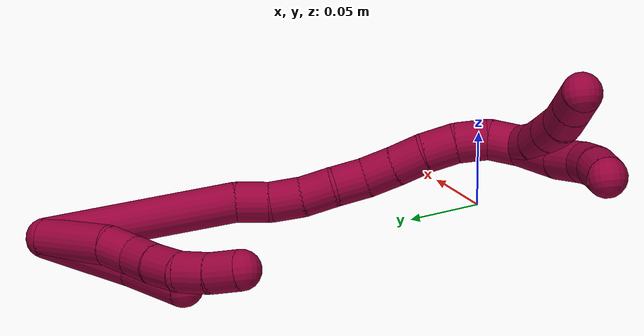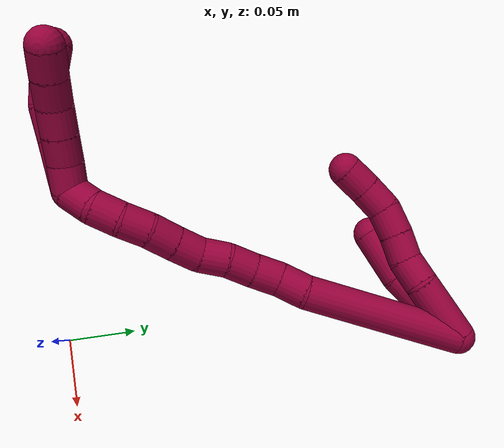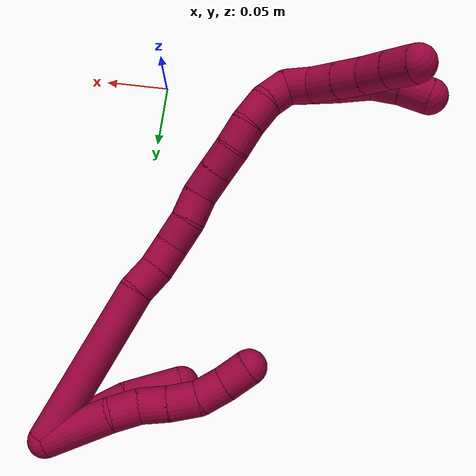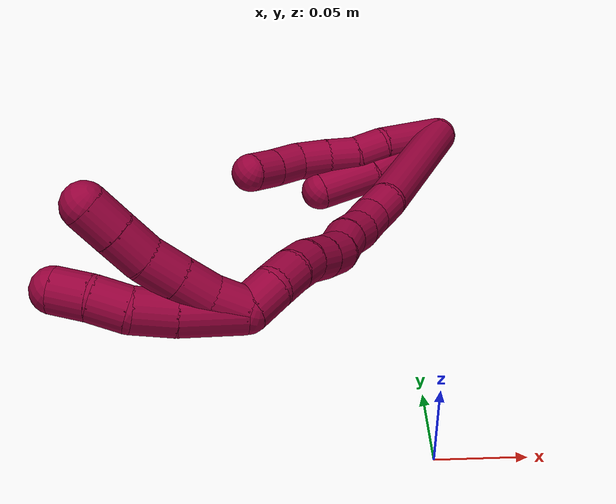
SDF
<sdf version="1.7">
 <world name="default">
  <model name="8">
   <static>0</static>
   <link name="8">
    <collision name="collision-cylinder-e_1_2_8">
     <pose>-0.00983 -0.020803 0.006189 1.28165 -0.425274 -0.319309</pose>
     <geometry><cylinder><radius>0.0125</radius><length>0.047653</length></cylinder></geometry>
     <surface>
      <friction><ode><mu>1.16</mu><mu2>1.16</mu2><slip1>0</slip1><slip2>0</slip2></ode></friction>
      <contact><ode><kp>1e+06</kp><kd>1</kd><max_vel>0</max_vel><min_depth>0.001</min_depth></ode></contact>
     </surface>
    </collision>
    <visual name="visual-cylinder-e_1_2_8">
     <pose>-0.00983 -0.020803 0.006189 1.28165 -0.425274 -0.319309</pose>
     <geometry><cylinder><radius>0.0125</radius><length>0.047653</length></cylinder></geometry>
     <material><ambient>0.584314 0 0.227451 1</ambient></material>
    </visual>
    <collision name="collision-cylinder-e_2_8_9">
     <pose>-0.023784 -0.049537 0.017102 1.03347 -0.420129 -0.241132</pose>
     <geometry><cylinder><radius>0.0125</radius><length>0.020222</length></cylinder></geometry>
     <surface>
      <friction><ode><mu>1.16</mu><mu2>1.16</mu2><slip1>0</slip1><slip2>0</slip2></ode></friction>
      <contact><ode><kp>1e+06</kp><kd>1</kd><max_vel>0</max_vel><min_depth>0.001</min_depth></ode></contact>
     </surface>
    </collision>
    <visual name="visual-cylinder-e_2_8_9">
     <pose>-0.023784 -0.049537 0.017102 1.03347 -0.420129 -0.241132</pose>
     <geometry><cylinder><radius>0.0125</radius><length>0.020222</length></cylinder></geometry>
     <material><ambient>0.584314 0 0.227451 1</ambient></material>
    </visual>
    <collision name="collision-cylinder-e_3_9_10">
     <pose>-0.029618 -0.066423 0.026029 1.13209 -0.171157 -0.108913</pose>
     <geometry><cylinder><radius>0.0125</radius><length>0.020077</length></cylinder></geometry>
     <surface>
      <friction><ode><mu>1.16</mu><mu2>1.16</mu2><slip1>0</slip1><slip2>0</slip2></ode></friction>
      <contact><ode><kp>1e+06</kp><kd>1</kd><max_vel>0</max_vel><min_depth>0.001</min_depth></ode></contact>
     </surface>
    </collision>
    <visual name="visual-cylinder-e_3_9_10">
     <pose>-0.029618 -0.066423 0.026029 1.13209 -0.171157 -0.108913</pose>
     <geometry><cylinder><radius>0.0125</radius><length>0.020077</length></cylinder></geometry>
     <material><ambient>0.584314 0 0.227451 1</ambient></material>
    </visual>
    <collision name="collision-cylinder-e_4_10_11">
     <pose>-0.03414 -0.084865 0.034253 1.1698 -0.266436 -0.177019</pose>
     <geometry><cylinder><radius>0.0125</radius><length>0.021364</length></cylinder></geometry>
     <surface>
      <friction><ode><mu>1.16</mu><mu2>1.16</mu2><slip1>0</slip1><slip2>0</slip2></ode></friction>
      <contact><ode><kp>1e+06</kp><kd>1</kd><max_vel>0</max_vel><min_depth>0.001</min_depth></ode></contact>
     </surface>
    </collision>
    <visual name="visual-cylinder-e_4_10_11">
     <pose>-0.03414 -0.084865 0.034253 1.1698 -0.266436 -0.177019</pose>
     <geometry><cylinder><radius>0.0125</radius><length>0.021364</length></cylinder></geometry>
     <material><ambient>0.584314 0 0.227451 1</ambient></material>
    </visual>
    <collision name="collision-cylinder-e_5_11_12">
     <pose>-0.042392 -0.102727 0.040276 1.33634 -0.563389 -0.449112</pose>
     <geometry><cylinder><radius>0.0125</radius><length>0.020369</length></cylinder></geometry>
     <surface>
      <friction><ode><mu>1.16</mu><mu2>1.16</mu2><slip1>0</slip1><slip2>0</slip2></ode></friction>
      <contact><ode><kp>1e+06</kp><kd>1</kd><max_vel>0</max_vel><min_depth>0.001</min_depth></ode></contact>
     </surface>
    </collision>
    <visual name="visual-cylinder-e_5_11_12">
     <pose>-0.042392 -0.102727 0.040276 1.33634 -0.563389 -0.449112</pose>
     <geometry><cylinder><radius>0.0125</radius><length>0.020369</length></cylinder></geometry>
     <material><ambient>0.584314 0 0.227451 1</ambient></material>
    </visual>
    <collision name="collision-cylinder-e_6_12_6">
     <pose>-0.0535 -0.119511 0.042855 1.50212 -0.592073 -0.554797</pose>
     <geometry><cylinder><radius>0.0125</radius><length>0.020316</length></cylinder></geometry>
     <surface>
      <friction><ode><mu>1.16</mu><mu2>1.16</mu2><slip1>0</slip1><slip2>0</slip2></ode></friction>
      <contact><ode><kp>1e+06</kp><kd>1</kd><max_vel>0</max_vel><min_depth>0.001</min_depth></ode></contact>
     </surface>
    </collision>
    <visual name="visual-cylinder-e_6_12_6">
     <pose>-0.0535 -0.119511 0.042855 1.50212 -0.592073 -0.554797</pose>
     <geometry><cylinder><radius>0.0125</radius><length>0.020316</length></cylinder></geometry>
     <material><ambient>0.584314 0 0.227451 1</ambient></material>
    </visual>
    <collision name="collision-cylinder-e_1_2_13">
     <pose>-0.017419 -0.021159 0.012928 1.02234 -0.612406 -0.351</pose>
     <geometry><cylinder><radius>0.0125</radius><length>0.060606</length></cylinder></geometry>
     <surface>
      <friction><ode><mu>1.16</mu><mu2>1.16</mu2><slip1>0</slip1><slip2>0</slip2></ode></friction>
      <contact><ode><kp>1e+06</kp><kd>1</kd><max_vel>0</max_vel><min_depth>0.001</min_depth></ode></contact>
     </surface>
    </collision>
    <visual name="visual-cylinder-e_1_2_13">
     <pose>-0.017419 -0.021159 0.012928 1.02234 -0.612406 -0.351</pose>
     <geometry><cylinder><radius>0.0125</radius><length>0.060606</length></cylinder></geometry>
     <material><ambient>0.584314 0 0.227451 1</ambient></material>
    </visual>
    <collision name="collision-cylinder-e_2_13_5">
     <pose>-0.042625 -0.058005 0.034871 1.04918 -0.406387 -0.237336</pose>
     <geometry><cylinder><radius>0.0125</radius><length>0.039394</length></cylinder></geometry>
     <surface>
      <friction><ode><mu>1.16</mu><mu2>1.16</mu2><slip1>0</slip1><slip2>0</slip2></ode></friction>
      <contact><ode><kp>1e+06</kp><kd>1</kd><max_vel>0</max_vel><min_depth>0.001</min_depth></ode></contact>
     </surface>
    </collision>
    <visual name="visual-cylinder-e_2_13_5">
     <pose>-0.042625 -0.058005 0.034871 1.04918 -0.406387 -0.237336</pose>
     <geometry><cylinder><radius>0.0125</radius><length>0.039394</length></cylinder></geometry>
     <material><ambient>0.584314 0 0.227451 1</ambient></material>
    </visual>
    <collision name="collision-cylinder-e_1_2_14">
     <pose>-0.050426 -0.030725 -0.005021 1.73279 -1.01769 -1.16173</pose>
     <geometry><cylinder><radius>0.0125</radius><length>0.118525</length></cylinder></geometry>
     <surface>
      <friction><ode><mu>1.16</mu><mu2>1.16</mu2><slip1>0</slip1><slip2>0</slip2></ode></friction>
      <contact><ode><kp>1e+06</kp><kd>1</kd><max_vel>0</max_vel><min_depth>0.001</min_depth></ode></contact>
     </surface>
    </collision>
    <visual name="visual-cylinder-e_1_2_14">
     <pose>-0.050426 -0.030725 -0.005021 1.73279 -1.01769 -1.16173</pose>
     <geometry><cylinder><radius>0.0125</radius><length>0.118525</length></cylinder></geometry>
     <material><ambient>0.584314 0 0.227451 1</ambient></material>
    </visual>
    <collision name="collision-cylinder-e_2_14_15">
     <pose>-0.109203 -0.067482 -0.008717 1.35456 -0.934017 -0.770425</pose>
     <geometry><cylinder><radius>0.0125</radius><length>0.020772</length></cylinder></geometry>
     <surface>
      <friction><ode><mu>1.16</mu><mu2>1.16</mu2><slip1>0</slip1><slip2>0</slip2></ode></friction>
      <contact><ode><kp>1e+06</kp><kd>1</kd><max_vel>0</max_vel><min_depth>0.001</min_depth></ode></contact>
     </surface>
    </collision>
    <visual name="visual-cylinder-e_2_14_15">
     <pose>-0.109203 -0.067482 -0.008717 1.35456 -0.934017 -0.770425</pose>
     <geometry><cylinder><radius>0.0125</radius><length>0.020772</length></cylinder></geometry>
     <material><ambient>0.584314 0 0.227451 1</ambient></material>
    </visual>
    <collision name="collision-cylinder-e_3_15_16">
     <pose>-0.125964 -0.079045 -0.007972 1.6753 -0.986508 -1.07628</pose>
     <geometry><cylinder><radius>0.0125</radius><length>0.020167</length></cylinder></geometry>
     <surface>
      <friction><ode><mu>1.16</mu><mu2>1.16</mu2><slip1>0</slip1><slip2>0</slip2></ode></friction>
      <contact><ode><kp>1e+06</kp><kd>1</kd><max_vel>0</max_vel><min_depth>0.001</min_depth></ode></contact>
     </surface>
    </collision>
    <visual name="visual-cylinder-e_3_15_16">
     <pose>-0.125964 -0.079045 -0.007972 1.6753 -0.986508 -1.07628</pose>
     <geometry><cylinder><radius>0.0125</radius><length>0.020167</length></cylinder></geometry>
     <material><ambient>0.584314 0 0.227451 1</ambient></material>
    </visual>
    <collision name="collision-cylinder-e_4_16_17">
     <pose>-0.141958 -0.091046 -0.010407 1.84991 -0.844956 -1.07566</pose>
     <geometry><cylinder><radius>0.0125</radius><length>0.020277</length></cylinder></geometry>
     <surface>
      <friction><ode><mu>1.16</mu><mu2>1.16</mu2><slip1>0</slip1><slip2>0</slip2></ode></friction>
      <contact><ode><kp>1e+06</kp><kd>1</kd><max_vel>0</max_vel><min_depth>0.001</min_depth></ode></contact>
     </surface>
    </collision>
    <visual name="visual-cylinder-e_4_16_17">
     <pose>-0.141958 -0.091046 -0.010407 1.84991 -0.844956 -1.07566</pose>
     <geometry><cylinder><radius>0.0125</radius><length>0.020277</length></cylinder></geometry>
     <material><ambient>0.584314 0 0.227451 1</ambient></material>
    </visual>
    <collision name="collision-cylinder-e_5_17_18">
     <pose>-0.158295 -0.102191 -0.014096 1.94486 -1.04992 -1.40846</pose>
     <geometry><cylinder><radius>0.0125</radius><length>0.020185</length></cylinder></geometry>
     <surface>
      <friction><ode><mu>1.16</mu><mu2>1.16</mu2><slip1>0</slip1><slip2>0</slip2></ode></friction>
      <contact><ode><kp>1e+06</kp><kd>1</kd><max_vel>0</max_vel><min_depth>0.001</min_depth></ode></contact>
     </surface>
    </collision>
    <visual name="visual-cylinder-e_5_17_18">
     <pose>-0.158295 -0.102191 -0.014096 1.94486 -1.04992 -1.40846</pose>
     <geometry><cylinder><radius>0.0125</radius><length>0.020185</length></cylinder></geometry>
     <material><ambient>0.584314 0 0.227451 1</ambient></material>
    </visual>
    <collision name="collision-cylinder-e_6_18_19">
     <pose>-0.173902 -0.113814 -0.018213 1.88809 -0.752935 -0.999393</pose>
     <geometry><cylinder><radius>0.0125</radius><length>0.020044</length></cylinder></geometry>
     <surface>
      <friction><ode><mu>1.16</mu><mu2>1.16</mu2><slip1>0</slip1><slip2>0</slip2></ode></friction>
      <contact><ode><kp>1e+06</kp><kd>1</kd><max_vel>0</max_vel><min_depth>0.001</min_depth></ode></contact>
     </surface>
    </collision>
    <visual name="visual-cylinder-e_6_18_19">
     <pose>-0.173902 -0.113814 -0.018213 1.88809 -0.752935 -0.999393</pose>
     <geometry><cylinder><radius>0.0125</radius><length>0.020044</length></cylinder></geometry>
     <material><ambient>0.584314 0 0.227451 1</ambient></material>
    </visual>
    <collision name="collision-cylinder-e_7_19_20">
     <pose>-0.187142 -0.128021 -0.02308 1.91304 -0.692091 -0.945143</pose>
     <geometry><cylinder><radius>0.0125</radius><length>0.020019</length></cylinder></geometry>
     <surface>
      <friction><ode><mu>1.16</mu><mu2>1.16</mu2><slip1>0</slip1><slip2>0</slip2></ode></friction>
      <contact><ode><kp>1e+06</kp><kd>1</kd><max_vel>0</max_vel><min_depth>0.001</min_depth></ode></contact>
     </surface>
    </collision>
    <visual name="visual-cylinder-e_7_19_20">
     <pose>-0.187142 -0.128021 -0.02308 1.91304 -0.692091 -0.945143</pose>
     <geometry><cylinder><radius>0.0125</radius><length>0.020019</length></cylinder></geometry>
     <material><ambient>0.584314 0 0.227451 1</ambient></material>
    </visual>
    <collision name="collision-cylinder-e_8_20_21">
     <pose>-0.201135 -0.141517 -0.027498 1.85644 -0.86362 -1.10363</pose>
     <geometry><cylinder><radius>0.0125</radius><length>0.020009</length></cylinder></geometry>
     <surface>
      <friction><ode><mu>1.16</mu><mu2>1.16</mu2><slip1>0</slip1><slip2>0</slip2></ode></friction>
      <contact><ode><kp>1e+06</kp><kd>1</kd><max_vel>0</max_vel><min_depth>0.001</min_depth></ode></contact>
     </surface>
    </collision>
    <visual name="visual-cylinder-e_8_20_21">
     <pose>-0.201135 -0.141517 -0.027498 1.85644 -0.86362 -1.10363</pose>
     <geometry><cylinder><radius>0.0125</radius><length>0.020009</length></cylinder></geometry>
     <material><ambient>0.584314 0 0.227451 1</ambient></material>
    </visual>
    <collision name="collision-cylinder-e_9_21_22">
     <pose>-0.216684 -0.153827 -0.029241 1.55626 -0.917967 -0.906472</pose>
     <geometry><cylinder><radius>0.0125</radius><length>0.020001</length></cylinder></geometry>
     <surface>
      <friction><ode><mu>1.16</mu><mu2>1.16</mu2><slip1>0</slip1><slip2>0</slip2></ode></friction>
      <contact><ode><kp>1e+06</kp><kd>1</kd><max_vel>0</max_vel><min_depth>0.001</min_depth></ode></contact>
     </surface>
    </collision>
    <visual name="visual-cylinder-e_9_21_22">
     <pose>-0.216684 -0.153827 -0.029241 1.55626 -0.917967 -0.906472</pose>
     <geometry><cylinder><radius>0.0125</radius><length>0.020001</length></cylinder></geometry>
     <material><ambient>0.584314 0 0.227451 1</ambient></material>
    </visual>
    <collision name="collision-cylinder-e_10_22_1">
     <pose>-0.232074 -0.165729 -0.025895 1.0611 -0.83979 -0.512314</pose>
     <geometry><cylinder><radius>0.0125</radius><length>0.020002</length></cylinder></geometry>
     <surface>
      <friction><ode><mu>1.16</mu><mu2>1.16</mu2><slip1>0</slip1><slip2>0</slip2></ode></friction>
      <contact><ode><kp>1e+06</kp><kd>1</kd><max_vel>0</max_vel><min_depth>0.001</min_depth></ode></contact>
     </surface>
    </collision>
    <visual name="visual-cylinder-e_10_22_1">
     <pose>-0.232074 -0.165729 -0.025895 1.0611 -0.83979 -0.512314</pose>
     <geometry><cylinder><radius>0.0125</radius><length>0.020002</length></cylinder></geometry>
     <material><ambient>0.584314 0 0.227451 1</ambient></material>
    </visual>
    <collision name="collision-cylinder-e_1_1_23">
     <pose>-0.24126 -0.187838 -0.015261 1.14536 -0.097063 -0.062611</pose>
     <geometry><cylinder><radius>0.0125</radius><length>0.035918</length></cylinder></geometry>
     <surface>
      <friction><ode><mu>1.16</mu><mu2>1.16</mu2><slip1>0</slip1><slip2>0</slip2></ode></friction>
      <contact><ode><kp>1e+06</kp><kd>1</kd><max_vel>0</max_vel><min_depth>0.001</min_depth></ode></contact>
     </surface>
    </collision>
    <visual name="visual-cylinder-e_1_1_23">
     <pose>-0.24126 -0.187838 -0.015261 1.14536 -0.097063 -0.062611</pose>
     <geometry><cylinder><radius>0.0125</radius><length>0.035918</length></cylinder></geometry>
     <material><ambient>0.584314 0 0.227451 1</ambient></material>
    </visual>
    <collision name="collision-cylinder-e_2_23_24">
     <pose>-0.24359 -0.215438 -0.004458 1.27692 -0.049795 -0.036959</pose>
     <geometry><cylinder><radius>0.0125</radius><length>0.023679</length></cylinder></geometry>
     <surface>
      <friction><ode><mu>1.16</mu><mu2>1.16</mu2><slip1>0</slip1><slip2>0</slip2></ode></friction>
      <contact><ode><kp>1e+06</kp><kd>1</kd><max_vel>0</max_vel><min_depth>0.001</min_depth></ode></contact>
     </surface>
    </collision>
    <visual name="visual-cylinder-e_2_23_24">
     <pose>-0.24359 -0.215438 -0.004458 1.27692 -0.049795 -0.036959</pose>
     <geometry><cylinder><radius>0.0125</radius><length>0.023679</length></cylinder></geometry>
     <material><ambient>0.584314 0 0.227451 1</ambient></material>
    </visual>
    <collision name="collision-cylinder-e_3_24_25">
     <pose>-0.241532 -0.235984 0.00206 1.24738 0.265571 0.19162</pose>
     <geometry><cylinder><radius>0.0125</radius><length>0.020173</length></cylinder></geometry>
     <surface>
      <friction><ode><mu>1.16</mu><mu2>1.16</mu2><slip1>0</slip1><slip2>0</slip2></ode></friction>
      <contact><ode><kp>1e+06</kp><kd>1</kd><max_vel>0</max_vel><min_depth>0.001</min_depth></ode></contact>
     </surface>
    </collision>
    <visual name="visual-cylinder-e_3_24_25">
     <pose>-0.241532 -0.235984 0.00206 1.24738 0.265571 0.19162</pose>
     <geometry><cylinder><radius>0.0125</radius><length>0.020173</length></cylinder></geometry>
     <material><ambient>0.584314 0 0.227451 1</ambient></material>
    </visual>
    <collision name="collision-cylinder-e_4_25_4">
     <pose>-0.235889 -0.253587 0.00997 1.04893 0.300625 0.17479</pose>
     <geometry><cylinder><radius>0.0125</radius><length>0.020229</length></cylinder></geometry>
     <surface>
      <friction><ode><mu>1.16</mu><mu2>1.16</mu2><slip1>0</slip1><slip2>0</slip2></ode></friction>
      <contact><ode><kp>1e+06</kp><kd>1</kd><max_vel>0</max_vel><min_depth>0.001</min_depth></ode></contact>
     </surface>
    </collision>
    <visual name="visual-cylinder-e_4_25_4">
     <pose>-0.235889 -0.253587 0.00997 1.04893 0.300625 0.17479</pose>
     <geometry><cylinder><radius>0.0125</radius><length>0.020229</length></cylinder></geometry>
     <material><ambient>0.584314 0 0.227451 1</ambient></material>
    </visual>
    <collision name="collision-cylinder-e_1_1_26">
     <pose>-0.238122 -0.181403 -0.021583 1.46404 0.140256 0.126068</pose>
     <geometry><cylinder><radius>0.0125</radius><length>0.02</length></cylinder></geometry>
     <surface>
      <friction><ode><mu>1.16</mu><mu2>1.16</mu2><slip1>0</slip1><slip2>0</slip2></ode></friction>
      <contact><ode><kp>1e+06</kp><kd>1</kd><max_vel>0</max_vel><min_depth>0.001</min_depth></ode></contact>
     </surface>
    </collision>
    <visual name="visual-cylinder-e_1_1_26">
     <pose>-0.238122 -0.181403 -0.021583 1.46404 0.140256 0.126068</pose>
     <geometry><cylinder><radius>0.0125</radius><length>0.02</length></cylinder></geometry>
     <material><ambient>0.584314 0 0.227451 1</ambient></material>
    </visual>
    <collision name="collision-cylinder-e_2_26_27">
     <pose>-0.234875 -0.201036 -0.021416 1.66129 0.18592 0.203439</pose>
     <geometry><cylinder><radius>0.0125</radius><length>0.02</length></cylinder></geometry>
     <surface>
      <friction><ode><mu>1.16</mu><mu2>1.16</mu2><slip1>0</slip1><slip2>0</slip2></ode></friction>
      <contact><ode><kp>1e+06</kp><kd>1</kd><max_vel>0</max_vel><min_depth>0.001</min_depth></ode></contact>
     </surface>
    </collision>
    <visual name="visual-cylinder-e_2_26_27">
     <pose>-0.234875 -0.201036 -0.021416 1.66129 0.18592 0.203439</pose>
     <geometry><cylinder><radius>0.0125</radius><length>0.02</length></cylinder></geometry>
     <material><ambient>0.584314 0 0.227451 1</ambient></material>
    </visual>
    <collision name="collision-cylinder-e_3_27_28">
     <pose>-0.231049 -0.220573 -0.023317 1.67434 0.199047 0.220635</pose>
     <geometry><cylinder><radius>0.0125</radius><length>0.02</length></cylinder></geometry>
     <surface>
      <friction><ode><mu>1.16</mu><mu2>1.16</mu2><slip1>0</slip1><slip2>0</slip2></ode></friction>
      <contact><ode><kp>1e+06</kp><kd>1</kd><max_vel>0</max_vel><min_depth>0.001</min_depth></ode></contact>
     </surface>
    </collision>
    <visual name="visual-cylinder-e_3_27_28">
     <pose>-0.231049 -0.220573 -0.023317 1.67434 0.199047 0.220635</pose>
     <geometry><cylinder><radius>0.0125</radius><length>0.02</length></cylinder></geometry>
     <material><ambient>0.584314 0 0.227451 1</ambient></material>
    </visual>
    <collision name="collision-cylinder-e_4_28_29">
     <pose>-0.226359 -0.239626 -0.026798 1.8301 0.274752 0.355608</pose>
     <geometry><cylinder><radius>0.0125</radius><length>0.02</length></cylinder></geometry>
     <surface>
      <friction><ode><mu>1.16</mu><mu2>1.16</mu2><slip1>0</slip1><slip2>0</slip2></ode></friction>
      <contact><ode><kp>1e+06</kp><kd>1</kd><max_vel>0</max_vel><min_depth>0.001</min_depth></ode></contact>
     </surface>
    </collision>
    <visual name="visual-cylinder-e_4_28_29">
     <pose>-0.226359 -0.239626 -0.026798 1.8301 0.274752 0.355608</pose>
     <geometry><cylinder><radius>0.0125</radius><length>0.02</length></cylinder></geometry>
     <material><ambient>0.584314 0 0.227451 1</ambient></material>
    </visual>
    <collision name="collision-cylinder-e_5_29_3">
     <pose>-0.220753 -0.258197 -0.03166 1.82358 0.293527 0.377191</pose>
     <geometry><cylinder><radius>0.0125</radius><length>0.02</length></cylinder></geometry>
     <surface>
      <friction><ode><mu>1.16</mu><mu2>1.16</mu2><slip1>0</slip1><slip2>0</slip2></ode></friction>
      <contact><ode><kp>1e+06</kp><kd>1</kd><max_vel>0</max_vel><min_depth>0.001</min_depth></ode></contact>
     </surface>
    </collision>
    <visual name="visual-cylinder-e_5_29_3">
     <pose>-0.220753 -0.258197 -0.03166 1.82358 0.293527 0.377191</pose>
     <geometry><cylinder><radius>0.0125</radius><length>0.02</length></cylinder></geometry>
     <material><ambient>0.584314 0 0.227451 1</ambient></material>
    </visual>
    <collision name="collision-sphere-3">
     <pose>-0.217859 -0.267466 -0.034054 0 -0 0</pose>
     <geometry><sphere><radius>0.0125</radius></sphere></geometry>
     <surface>
      <friction><ode><mu>1.16</mu><mu2>1.16</mu2><slip1>0</slip1><slip2>0</slip2></ode></friction>
      <contact><ode><kp>1e+06</kp><kd>1</kd><max_vel>0</max_vel><min_depth>0.001</min_depth></ode></contact>
     </surface>
    </collision>
    <visual name="visual-sphere-3">
     <pose>-0.217859 -0.267466 -0.034054 0 -0 0</pose>
     <geometry><sphere><radius>0.0125</radius></sphere></geometry>
     <material><ambient>0.584314 0 0.227451 1</ambient></material>
    </visual>
    <collision name="collision-sphere-29">
     <pose>-0.223646 -0.248929 -0.029266 0 -0 0</pose>
     <geometry><sphere><radius>0.0125</radius></sphere></geometry>
     <surface>
      <friction><ode><mu>1.16</mu><mu2>1.16</mu2><slip1>0</slip1><slip2>0</slip2></ode></friction>
      <contact><ode><kp>1e+06</kp><kd>1</kd><max_vel>0</max_vel><min_depth>0.001</min_depth></ode></contact>
     </surface>
    </collision>
    <visual name="visual-sphere-29">
     <pose>-0.223646 -0.248929 -0.029266 0 -0 0</pose>
     <geometry><sphere><radius>0.0125</radius></sphere></geometry>
     <material><ambient>0.584314 0 0.227451 1</ambient></material>
    </visual>
    <collision name="collision-sphere-28">
     <pose>-0.229072 -0.230323 -0.02433 0 -0 0</pose>
     <geometry><sphere><radius>0.0125</radius></sphere></geometry>
     <surface>
      <friction><ode><mu>1.16</mu><mu2>1.16</mu2><slip1>0</slip1><slip2>0</slip2></ode></friction>
      <contact><ode><kp>1e+06</kp><kd>1</kd><max_vel>0</max_vel><min_depth>0.001</min_depth></ode></contact>
     </surface>
    </collision>
    <visual name="visual-sphere-28">
     <pose>-0.229072 -0.230323 -0.02433 0 -0 0</pose>
     <geometry><sphere><radius>0.0125</radius></sphere></geometry>
     <material><ambient>0.584314 0 0.227451 1</ambient></material>
    </visual>
    <collision name="collision-sphere-27">
     <pose>-0.233027 -0.210823 -0.022304 0 -0 0</pose>
     <geometry><sphere><radius>0.0125</radius></sphere></geometry>
     <surface>
      <friction><ode><mu>1.16</mu><mu2>1.16</mu2><slip1>0</slip1><slip2>0</slip2></ode></friction>
      <contact><ode><kp>1e+06</kp><kd>1</kd><max_vel>0</max_vel><min_depth>0.001</min_depth></ode></contact>
     </surface>
    </collision>
    <visual name="visual-sphere-27">
     <pose>-0.233027 -0.210823 -0.022304 0 -0 0</pose>
     <geometry><sphere><radius>0.0125</radius></sphere></geometry>
     <material><ambient>0.584314 0 0.227451 1</ambient></material>
    </visual>
    <collision name="collision-sphere-26">
     <pose>-0.236724 -0.191248 -0.020528 0 -0 0</pose>
     <geometry><sphere><radius>0.0125</radius></sphere></geometry>
     <surface>
      <friction><ode><mu>1.16</mu><mu2>1.16</mu2><slip1>0</slip1><slip2>0</slip2></ode></friction>
      <contact><ode><kp>1e+06</kp><kd>1</kd><max_vel>0</max_vel><min_depth>0.001</min_depth></ode></contact>
     </surface>
    </collision>
    <visual name="visual-sphere-26">
     <pose>-0.236724 -0.191248 -0.020528 0 -0 0</pose>
     <geometry><sphere><radius>0.0125</radius></sphere></geometry>
     <material><ambient>0.584314 0 0.227451 1</ambient></material>
    </visual>
    <collision name="collision-sphere-4">
     <pose>-0.232894 -0.261963 0.014786 0 -0 0</pose>
     <geometry><sphere><radius>0.0125</radius></sphere></geometry>
     <surface>
      <friction><ode><mu>1.16</mu><mu2>1.16</mu2><slip1>0</slip1><slip2>0</slip2></ode></friction>
      <contact><ode><kp>1e+06</kp><kd>1</kd><max_vel>0</max_vel><min_depth>0.001</min_depth></ode></contact>
     </surface>
    </collision>
    <visual name="visual-sphere-4">
     <pose>-0.232894 -0.261963 0.014786 0 -0 0</pose>
     <geometry><sphere><radius>0.0125</radius></sphere></geometry>
     <material><ambient>0.584314 0 0.227451 1</ambient></material>
    </visual>
    <collision name="collision-sphere-25">
     <pose>-0.238884 -0.245212 0.005154 0 -0 0</pose>
     <geometry><sphere><radius>0.0125</radius></sphere></geometry>
     <surface>
      <friction><ode><mu>1.16</mu><mu2>1.16</mu2><slip1>0</slip1><slip2>0</slip2></ode></friction>
      <contact><ode><kp>1e+06</kp><kd>1</kd><max_vel>0</max_vel><min_depth>0.001</min_depth></ode></contact>
     </surface>
    </collision>
    <visual name="visual-sphere-25">
     <pose>-0.238884 -0.245212 0.005154 0 -0 0</pose>
     <geometry><sphere><radius>0.0125</radius></sphere></geometry>
     <material><ambient>0.584314 0 0.227451 1</ambient></material>
    </visual>
    <collision name="collision-sphere-24">
     <pose>-0.244179 -0.226756 -0.001033 0 -0 0</pose>
     <geometry><sphere><radius>0.0125</radius></sphere></geometry>
     <surface>
      <friction><ode><mu>1.16</mu><mu2>1.16</mu2><slip1>0</slip1><slip2>0</slip2></ode></friction>
      <contact><ode><kp>1e+06</kp><kd>1</kd><max_vel>0</max_vel><min_depth>0.001</min_depth></ode></contact>
     </surface>
    </collision>
    <visual name="visual-sphere-24">
     <pose>-0.244179 -0.226756 -0.001033 0 -0 0</pose>
     <geometry><sphere><radius>0.0125</radius></sphere></geometry>
     <material><ambient>0.584314 0 0.227451 1</ambient></material>
    </visual>
    <collision name="collision-sphere-23">
     <pose>-0.243 -0.20412 -0.007883 0 -0 0</pose>
     <geometry><sphere><radius>0.0125</radius></sphere></geometry>
     <surface>
      <friction><ode><mu>1.16</mu><mu2>1.16</mu2><slip1>0</slip1><slip2>0</slip2></ode></friction>
      <contact><ode><kp>1e+06</kp><kd>1</kd><max_vel>0</max_vel><min_depth>0.001</min_depth></ode></contact>
     </surface>
    </collision>
    <visual name="visual-sphere-23">
     <pose>-0.243 -0.20412 -0.007883 0 -0 0</pose>
     <geometry><sphere><radius>0.0125</radius></sphere></geometry>
     <material><ambient>0.584314 0 0.227451 1</ambient></material>
    </visual>
    <collision name="collision-sphere-1">
     <pose>-0.23952 -0.171557 -0.022638 0 -0 0</pose>
     <geometry><sphere><radius>0.0125</radius></sphere></geometry>
     <surface>
      <friction><ode><mu>1.16</mu><mu2>1.16</mu2><slip1>0</slip1><slip2>0</slip2></ode></friction>
      <contact><ode><kp>1e+06</kp><kd>1</kd><max_vel>0</max_vel><min_depth>0.001</min_depth></ode></contact>
     </surface>
    </collision>
    <visual name="visual-sphere-1">
     <pose>-0.23952 -0.171557 -0.022638 0 -0 0</pose>
     <geometry><sphere><radius>0.0125</radius></sphere></geometry>
     <material><ambient>0.584314 0 0.227451 1</ambient></material>
    </visual>
    <collision name="collision-sphere-22">
     <pose>-0.224628 -0.159901 -0.029153 0 -0 0</pose>
     <geometry><sphere><radius>0.0125</radius></sphere></geometry>
     <surface>
      <friction><ode><mu>1.16</mu><mu2>1.16</mu2><slip1>0</slip1><slip2>0</slip2></ode></friction>
      <contact><ode><kp>1e+06</kp><kd>1</kd><max_vel>0</max_vel><min_depth>0.001</min_depth></ode></contact>
     </surface>
    </collision>
    <visual name="visual-sphere-22">
     <pose>-0.224628 -0.159901 -0.029153 0 -0 0</pose>
     <geometry><sphere><radius>0.0125</radius></sphere></geometry>
     <material><ambient>0.584314 0 0.227451 1</ambient></material>
    </visual>
    <collision name="collision-sphere-21">
     <pose>-0.20874 -0.147753 -0.02933 0 -0 0</pose>
     <geometry><sphere><radius>0.0125</radius></sphere></geometry>
     <surface>
      <friction><ode><mu>1.16</mu><mu2>1.16</mu2><slip1>0</slip1><slip2>0</slip2></ode></friction>
      <contact><ode><kp>1e+06</kp><kd>1</kd><max_vel>0</max_vel><min_depth>0.001</min_depth></ode></contact>
     </surface>
    </collision>
    <visual name="visual-sphere-21">
     <pose>-0.20874 -0.147753 -0.02933 0 -0 0</pose>
     <geometry><sphere><radius>0.0125</radius></sphere></geometry>
     <material><ambient>0.584314 0 0.227451 1</ambient></material>
    </visual>
    <collision name="collision-sphere-12">
     <pose>-0.047831 -0.111102 0.042276 0 -0 0</pose>
     <geometry><sphere><radius>0.0125</radius></sphere></geometry>
     <surface>
      <friction><ode><mu>1.16</mu><mu2>1.16</mu2><slip1>0</slip1><slip2>0</slip2></ode></friction>
      <contact><ode><kp>1e+06</kp><kd>1</kd><max_vel>0</max_vel><min_depth>0.001</min_depth></ode></contact>
     </surface>
    </collision>
    <visual name="visual-sphere-12">
     <pose>-0.047831 -0.111102 0.042276 0 -0 0</pose>
     <geometry><sphere><radius>0.0125</radius></sphere></geometry>
     <material><ambient>0.584314 0 0.227451 1</ambient></material>
    </visual>
    <collision name="collision-sphere-11">
     <pose>-0.036953 -0.094352 0.038275 0 -0 0</pose>
     <geometry><sphere><radius>0.0125</radius></sphere></geometry>
     <surface>
      <friction><ode><mu>1.16</mu><mu2>1.16</mu2><slip1>0</slip1><slip2>0</slip2></ode></friction>
      <contact><ode><kp>1e+06</kp><kd>1</kd><max_vel>0</max_vel><min_depth>0.001</min_depth></ode></contact>
     </surface>
    </collision>
    <visual name="visual-sphere-11">
     <pose>-0.036953 -0.094352 0.038275 0 -0 0</pose>
     <geometry><sphere><radius>0.0125</radius></sphere></geometry>
     <material><ambient>0.584314 0 0.227451 1</ambient></material>
    </visual>
    <collision name="collision-sphere-10">
     <pose>-0.031328 -0.075378 0.030231 0 -0 0</pose>
     <geometry><sphere><radius>0.0125</radius></sphere></geometry>
     <surface>
      <friction><ode><mu>1.16</mu><mu2>1.16</mu2><slip1>0</slip1><slip2>0</slip2></ode></friction>
      <contact><ode><kp>1e+06</kp><kd>1</kd><max_vel>0</max_vel><min_depth>0.001</min_depth></ode></contact>
     </surface>
    </collision>
    <visual name="visual-sphere-10">
     <pose>-0.031328 -0.075378 0.030231 0 -0 0</pose>
     <geometry><sphere><radius>0.0125</radius></sphere></geometry>
     <material><ambient>0.584314 0 0.227451 1</ambient></material>
    </visual>
    <collision name="collision-sphere-9">
     <pose>-0.027908 -0.057467 0.021827 0 -0 0</pose>
     <geometry><sphere><radius>0.0125</radius></sphere></geometry>
     <surface>
      <friction><ode><mu>1.16</mu><mu2>1.16</mu2><slip1>0</slip1><slip2>0</slip2></ode></friction>
      <contact><ode><kp>1e+06</kp><kd>1</kd><max_vel>0</max_vel><min_depth>0.001</min_depth></ode></contact>
     </surface>
    </collision>
    <visual name="visual-sphere-9">
     <pose>-0.027908 -0.057467 0.021827 0 -0 0</pose>
     <geometry><sphere><radius>0.0125</radius></sphere></geometry>
     <material><ambient>0.584314 0 0.227451 1</ambient></material>
    </visual>
    <collision name="collision-sphere-2">
     <geometry><sphere><radius>0.0125</radius></sphere></geometry>
     <surface>
      <friction><ode><mu>1.16</mu><mu2>1.16</mu2><slip1>0</slip1><slip2>0</slip2></ode></friction>
      <contact><ode><kp>1e+06</kp><kd>1</kd><max_vel>0</max_vel><min_depth>0.001</min_depth></ode></contact>
     </surface>
    </collision>
    <visual name="visual-sphere-2">
     <geometry><sphere><radius>0.0125</radius></sphere></geometry>
     <material><ambient>0.584314 0 0.227451 1</ambient></material>
    </visual>
    <collision name="collision-sphere-19">
     <pose>-0.180755 -0.120762 -0.020494 0 -0 0</pose>
     <geometry><sphere><radius>0.0125</radius></sphere></geometry>
     <surface>
      <friction><ode><mu>1.16</mu><mu2>1.16</mu2><slip1>0</slip1><slip2>0</slip2></ode></friction>
      <contact><ode><kp>1e+06</kp><kd>1</kd><max_vel>0</max_vel><min_depth>0.001</min_depth></ode></contact>
     </surface>
    </collision>
    <visual name="visual-sphere-19">
     <pose>-0.180755 -0.120762 -0.020494 0 -0 0</pose>
     <geometry><sphere><radius>0.0125</radius></sphere></geometry>
     <material><ambient>0.584314 0 0.227451 1</ambient></material>
    </visual>
    <collision name="collision-sphere-8">
     <pose>-0.01966 -0.041606 0.012377 0 -0 0</pose>
     <geometry><sphere><radius>0.0125</radius></sphere></geometry>
     <surface>
      <friction><ode><mu>1.16</mu><mu2>1.16</mu2><slip1>0</slip1><slip2>0</slip2></ode></friction>
      <contact><ode><kp>1e+06</kp><kd>1</kd><max_vel>0</max_vel><min_depth>0.001</min_depth></ode></contact>
     </surface>
    </collision>
    <visual name="visual-sphere-8">
     <pose>-0.01966 -0.041606 0.012377 0 -0 0</pose>
     <geometry><sphere><radius>0.0125</radius></sphere></geometry>
     <material><ambient>0.584314 0 0.227451 1</ambient></material>
    </visual>
    <collision name="collision-sphere-6">
     <pose>-0.059169 -0.12792 0.043433 0 -0 0</pose>
     <geometry><sphere><radius>0.0125</radius></sphere></geometry>
     <surface>
      <friction><ode><mu>1.16</mu><mu2>1.16</mu2><slip1>0</slip1><slip2>0</slip2></ode></friction>
      <contact><ode><kp>1e+06</kp><kd>1</kd><max_vel>0</max_vel><min_depth>0.001</min_depth></ode></contact>
     </surface>
    </collision>
    <visual name="visual-sphere-6">
     <pose>-0.059169 -0.12792 0.043433 0 -0 0</pose>
     <geometry><sphere><radius>0.0125</radius></sphere></geometry>
     <material><ambient>0.584314 0 0.227451 1</ambient></material>
    </visual>
    <collision name="collision-sphere-13">
     <pose>-0.034839 -0.042318 0.025856 0 -0 0</pose>
     <geometry><sphere><radius>0.0125</radius></sphere></geometry>
     <surface>
      <friction><ode><mu>1.16</mu><mu2>1.16</mu2><slip1>0</slip1><slip2>0</slip2></ode></friction>
      <contact><ode><kp>1e+06</kp><kd>1</kd><max_vel>0</max_vel><min_depth>0.001</min_depth></ode></contact>
     </surface>
    </collision>
    <visual name="visual-sphere-13">
     <pose>-0.034839 -0.042318 0.025856 0 -0 0</pose>
     <geometry><sphere><radius>0.0125</radius></sphere></geometry>
     <material><ambient>0.584314 0 0.227451 1</ambient></material>
    </visual>
    <collision name="collision-sphere-5">
     <pose>-0.050411 -0.073692 0.043886 0 -0 0</pose>
     <geometry><sphere><radius>0.0125</radius></sphere></geometry>
     <surface>
      <friction><ode><mu>1.16</mu><mu2>1.16</mu2><slip1>0</slip1><slip2>0</slip2></ode></friction>
      <contact><ode><kp>1e+06</kp><kd>1</kd><max_vel>0</max_vel><min_depth>0.001</min_depth></ode></contact>
     </surface>
    </collision>
    <visual name="visual-sphere-5">
     <pose>-0.050411 -0.073692 0.043886 0 -0 0</pose>
     <geometry><sphere><radius>0.0125</radius></sphere></geometry>
     <material><ambient>0.584314 0 0.227451 1</ambient></material>
    </visual>
    <collision name="collision-sphere-14">
     <pose>-0.100852 -0.06145 -0.010042 0 -0 0</pose>
     <geometry><sphere><radius>0.0125</radius></sphere></geometry>
     <surface>
      <friction><ode><mu>1.16</mu><mu2>1.16</mu2><slip1>0</slip1><slip2>0</slip2></ode></friction>
      <contact><ode><kp>1e+06</kp><kd>1</kd><max_vel>0</max_vel><min_depth>0.001</min_depth></ode></contact>
     </surface>
    </collision>
    <visual name="visual-sphere-14">
     <pose>-0.100852 -0.06145 -0.010042 0 -0 0</pose>
     <geometry><sphere><radius>0.0125</radius></sphere></geometry>
     <material><ambient>0.584314 0 0.227451 1</ambient></material>
    </visual>
    <collision name="collision-sphere-15">
     <pose>-0.117553 -0.073514 -0.007392 0 -0 0</pose>
     <geometry><sphere><radius>0.0125</radius></sphere></geometry>
     <surface>
      <friction><ode><mu>1.16</mu><mu2>1.16</mu2><slip1>0</slip1><slip2>0</slip2></ode></friction>
      <contact><ode><kp>1e+06</kp><kd>1</kd><max_vel>0</max_vel><min_depth>0.001</min_depth></ode></contact>
     </surface>
    </collision>
    <visual name="visual-sphere-15">
     <pose>-0.117553 -0.073514 -0.007392 0 -0 0</pose>
     <geometry><sphere><radius>0.0125</radius></sphere></geometry>
     <material><ambient>0.584314 0 0.227451 1</ambient></material>
    </visual>
    <collision name="collision-sphere-16">
     <pose>-0.134374 -0.084577 -0.008552 0 -0 0</pose>
     <geometry><sphere><radius>0.0125</radius></sphere></geometry>
     <surface>
      <friction><ode><mu>1.16</mu><mu2>1.16</mu2><slip1>0</slip1><slip2>0</slip2></ode></friction>
      <contact><ode><kp>1e+06</kp><kd>1</kd><max_vel>0</max_vel><min_depth>0.001</min_depth></ode></contact>
     </surface>
    </collision>
    <visual name="visual-sphere-16">
     <pose>-0.134374 -0.084577 -0.008552 0 -0 0</pose>
     <geometry><sphere><radius>0.0125</radius></sphere></geometry>
     <material><ambient>0.584314 0 0.227451 1</ambient></material>
    </visual>
    <collision name="collision-sphere-17">
     <pose>-0.149541 -0.097516 -0.012261 0 -0 0</pose>
     <geometry><sphere><radius>0.0125</radius></sphere></geometry>
     <surface>
      <friction><ode><mu>1.16</mu><mu2>1.16</mu2><slip1>0</slip1><slip2>0</slip2></ode></friction>
      <contact><ode><kp>1e+06</kp><kd>1</kd><max_vel>0</max_vel><min_depth>0.001</min_depth></ode></contact>
     </surface>
    </collision>
    <visual name="visual-sphere-17">
     <pose>-0.149541 -0.097516 -0.012261 0 -0 0</pose>
     <geometry><sphere><radius>0.0125</radius></sphere></geometry>
     <material><ambient>0.584314 0 0.227451 1</ambient></material>
    </visual>
    <collision name="collision-sphere-18">
     <pose>-0.167049 -0.106866 -0.015931 0 -0 0</pose>
     <geometry><sphere><radius>0.0125</radius></sphere></geometry>
     <surface>
      <friction><ode><mu>1.16</mu><mu2>1.16</mu2><slip1>0</slip1><slip2>0</slip2></ode></friction>
      <contact><ode><kp>1e+06</kp><kd>1</kd><max_vel>0</max_vel><min_depth>0.001</min_depth></ode></contact>
     </surface>
    </collision>
    <visual name="visual-sphere-18">
     <pose>-0.167049 -0.106866 -0.015931 0 -0 0</pose>
     <geometry><sphere><radius>0.0125</radius></sphere></geometry>
     <material><ambient>0.584314 0 0.227451 1</ambient></material>
    </visual>
    <collision name="collision-sphere-20">
     <pose>-0.19353 -0.13528 -0.025667 0 -0 0</pose>
     <geometry><sphere><radius>0.0125</radius></sphere></geometry>
     <surface>
      <friction><ode><mu>1.16</mu><mu2>1.16</mu2><slip1>0</slip1><slip2>0</slip2></ode></friction>
      <contact><ode><kp>1e+06</kp><kd>1</kd><max_vel>0</max_vel><min_depth>0.001</min_depth></ode></contact>
     </surface>
    </collision>
    <visual name="visual-sphere-20">
     <pose>-0.19353 -0.13528 -0.025667 0 -0 0</pose>
     <geometry><sphere><radius>0.0125</radius></sphere></geometry>
     <material><ambient>0.584314 0 0.227451 1</ambient></material>
    </visual>
    <inertial>
     <pose>-0.121535 -0.108795 -0.001434 0 -0 0</pose>
     <mass>0.75</mass>
     <inertia><ixx>-2.2e-05</ixx><ixy>0</ixy><ixz>0</ixz><iyy>8e-06</iyy><iyz>0</iyz><izz>0.000294</izz></inertia>
    </inertial>
   </link>
   <pose>0.038041 0.288215 0.023278 -2.6175 -0.197302 1.57751</pose>
  </model>
 </world>
</sdf>
